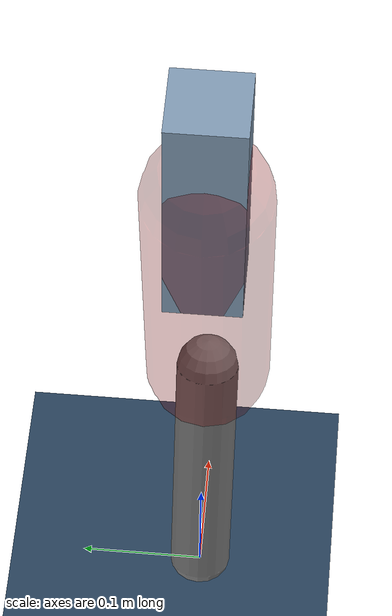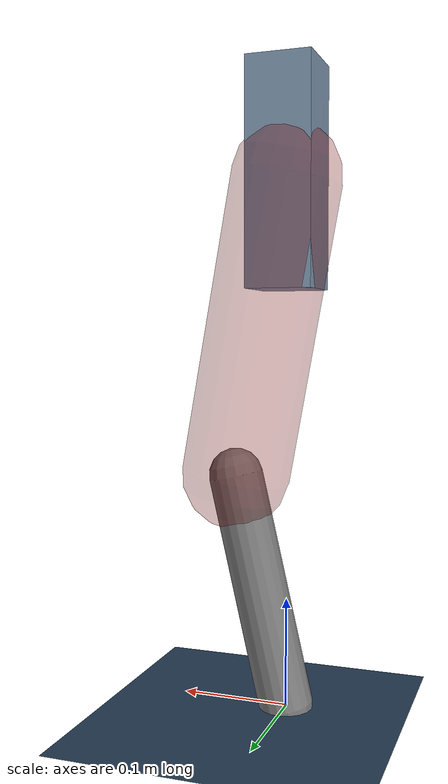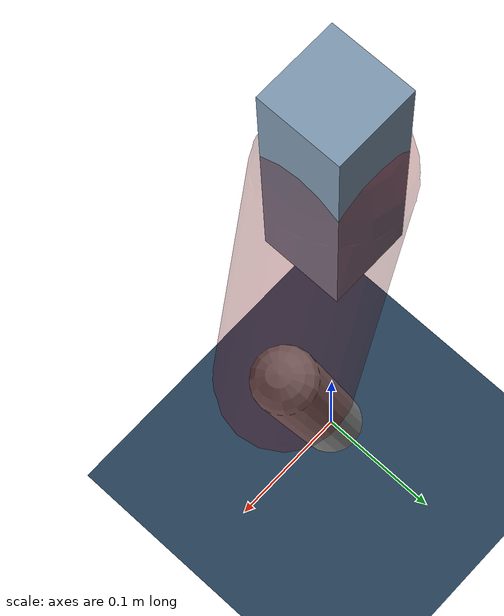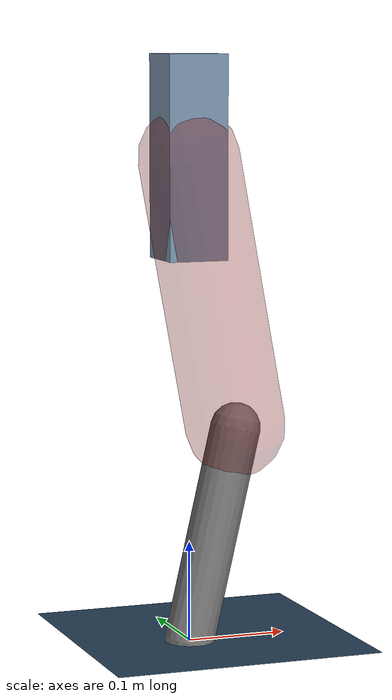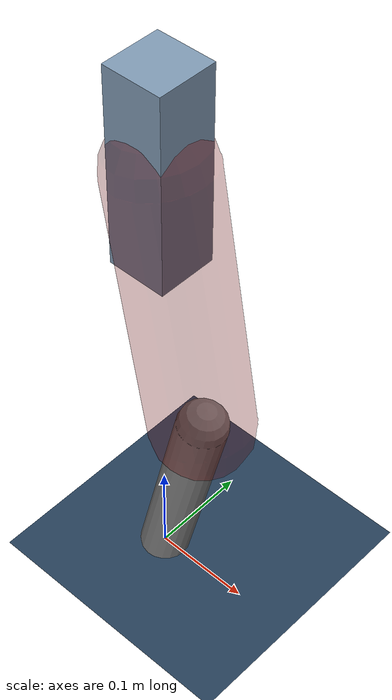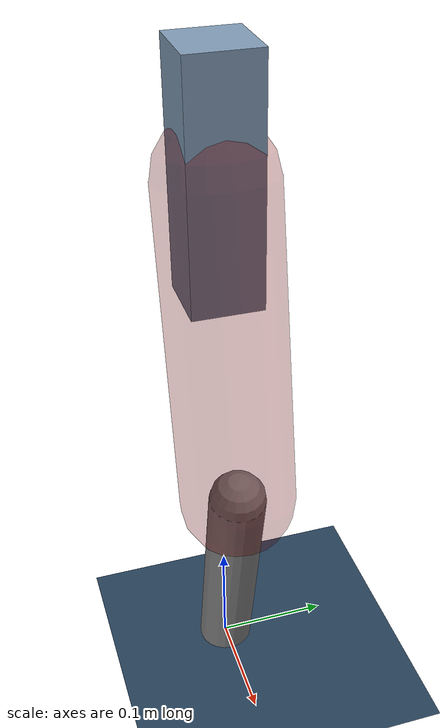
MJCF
<mujoco model="Hopper2D">
	<compiler inertiafromgeom="true" angle="radian" />
	<option timestep="0.001" integrator="implicit" cone="elliptic" solver="Newton" tolerance="1e-10" />

	<default>
		<geom contype="1" conaffinity="1" condim="3" friction="2 0.005 0.0001" solref="0.005 1" />
		<joint limited="true" damping="0.1" />
	</default>

	<asset>
		<texture name="skybox" type="skybox" builtin="gradient" rgb1=".4 .6 .8" rgb2="0 0 0" width="800" height="800" />
		<texture name="grid" type="2d" builtin="checker" rgb1=".1 .2 .3" rgb2=".2 .3 .4" width="300" height="300" mark="edge" markrgb=".2 .3 .4" />
		<material name="ground" texture="grid" texrepeat="1 1" texuniform="true" reflectance="0.1" />
		<material name="leg" rgba="0.5 0.6 0.7 1" />
	</asset>

	<worldbody>

		<geom name="floor" type="plane" size="5 5 0.25" material="ground" />

		<light directional="false" diffuse="0.8 0.8 0.8" specular="0.3 0.3 0.3" pos="0 0 2" dir="0 0 -1" />
		<light mode="targetbodycom" target="base" directional="false" diffuse="0.8 0.8 0.8" specular="0.3 0.3 0.3" pos="0 0 2" dir="0 0 -1" />

		<camera name="fixed" pos="0 -2 1" xyaxes="1 0 0 0 0 1" />
		<camera name="tracking" mode="trackcom" pos="0 -3 1" />

		<body name="root" pos="0 0 0.4832701815960126">
			<joint name="slide_x" type="slide" axis="1 0 0" range="-100 100" />
			<joint name="slide_z" type="slide" axis="0 0 1" range="0 10" />

			<body name="base" pos="0 0 0">
				<geom name="torso" type="box" size="0.03 0.03 0.1" mass="2.278" material="leg" />

				<body name="link1" pos="0 0 0" euler="0 1.390988108387543 0">
					<joint type="hinge" axis="0 -1 0" pos="0 0 0" name="hinge1" limited="true" range="-3.14 3.14" stiffness="0" damping="0.1" />
					<geom name="thigh" type="capsule" fromto="0 0 0 0.274443577589036 0 0" size="0.05" rgba="0.5 0 0 0.3" mass="0.9203976594903971" />

					<body name="link2" pos="0.274443577589036 0 0" euler="0 0.4060278545901134 0">
						<joint type="hinge" axis="0 -1 0" pos="0 0 0" name="hinge2" limited="true" range="-3.14 3.14" stiffness="0" damping="0.1" />
						<geom name="shank" type="capsule" fromto="0 0 0 0.21882660400697662 0 0" size="0.025" mass="0.4166612832055813" />

					</body>
				</body>
			</body>
		</body>
	</worldbody>

	<actuator>
		<motor name="torque1" joint="hinge1" ctrlrange="-85.57750577780749 85.57750577780749" ctrllimited="true" gear="1" />
		<motor name="torque2" joint="hinge2" ctrlrange="-96.81738730039768 96.81738730039768" ctrllimited="true" gear="1" />
	</actuator>
</mujoco>
